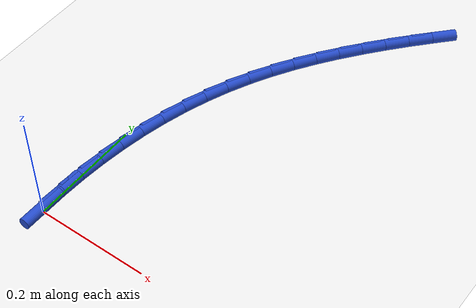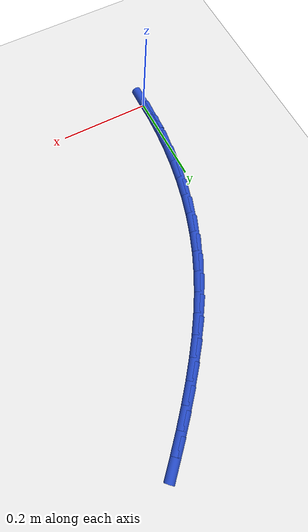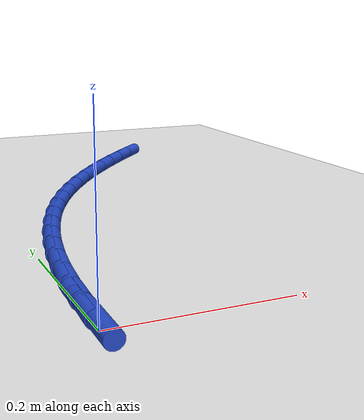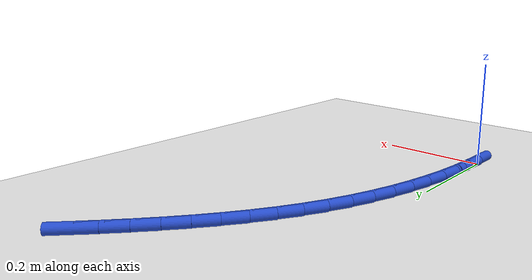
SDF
<sdf version="1.6">
 <world name="default">
  <model name="ground_plane">
   <static>1</static>
   <link name="link">
    <collision name="collision">
     <geometry><plane><normal>0 0 1</normal><size>100 100</size></plane></geometry>
     <surface><friction><ode><mu>100</mu><mu2>50</mu2></ode></friction></surface>
    </collision>
    <visual name="visual">
     <cast_shadows>0</cast_shadows>
     <geometry><plane><normal>0 0 1</normal><size>100 100</size></plane></geometry>
     <material>
      <script><uri>file://media/materials/scripts/gazebo.material</uri><name>Gazebo/WhiteGlow</name></script>
     </material>
    </visual>
   </link>
  </model>
  <model name="line">
   <link name="link_1">
    <pose>0.0006871009686475403 0.04359935567451913 0.01 0 1.57 1.513467387537418</pose>
    <collision name="collision">
     <geometry><cylinder><radius>0.01</radius><length>0.08</length></cylinder></geometry>
    </collision>
    <visual name="visual">
     <material>
      <script><name>Gazebo/Blue</name><uri>file://media/materials/scripts/gazebo.material</uri></script>
     </material>
     <geometry><cylinder><radius>0.01</radius><length>0.08</length></cylinder></geometry>
    </visual>
   </link>
   <link name="link_2">
    <pose>0.00318736421278894 0.08716415119225286 0.01 0 1.57 1.470846072998823</pose>
    <collision name="collision">
     <geometry><cylinder><radius>0.01</radius><length>0.08</length></cylinder></geometry>
    </collision>
    <visual name="visual">
     <material>
      <script><name>Gazebo/Blue</name><uri>file://media/materials/scripts/gazebo.material</uri></script>
     </material>
     <geometry><cylinder><radius>0.01</radius><length>0.08</length></cylinder></geometry>
    </visual>
   </link>
   <link name="link_3">
    <pose>0.007538731798664652 0.1305544141502632 0.01 0 1.57 1.4269265725976394</pose>
    <collision name="collision">
     <geometry><cylinder><radius>0.01</radius><length>0.08</length></cylinder></geometry>
    </collision>
    <visual name="visual">
     <material>
      <script><name>Gazebo/Blue</name><uri>file://media/materials/scripts/gazebo.material</uri></script>
     </material>
     <geometry><cylinder><radius>0.01</radius><length>0.08</length></cylinder></geometry>
    </visual>
   </link>
   <link name="link_4">
    <pose>0.013779145792515098 0.1736301721456119 0.01 0 1.57 1.3814642140110918</pose>
    <collision name="collision">
     <geometry><cylinder><radius>0.01</radius><length>0.08</length></cylinder></geometry>
    </collision>
    <visual name="visual">
     <material>
      <script><name>Gazebo/Blue</name><uri>file://media/materials/scripts/gazebo.material</uri></script>
     </material>
     <geometry><cylinder><radius>0.01</radius><length>0.08</length></cylinder></geometry>
    </visual>
   </link>
   <link name="link_5">
    <pose>0.02194654826058074 0.21625145277536093 0.01 0 1.57 1.334219068965814</pose>
    <collision name="collision">
     <geometry><cylinder><radius>0.01</radius><length>0.08</length></cylinder></geometry>
    </collision>
    <visual name="visual">
     <material>
      <script><name>Gazebo/Blue</name><uri>file://media/materials/scripts/gazebo.material</uri></script>
     </material>
     <geometry><cylinder><radius>0.01</radius><length>0.08</length></cylinder></geometry>
    </visual>
   </link>
   <link name="link_6">
    <pose>0.032078881269102036 0.2582782836365722 0.01 0 1.57 1.2849593329055553</pose>
    <collision name="collision">
     <geometry><cylinder><radius>0.01</radius><length>0.08</length></cylinder></geometry>
    </collision>
    <visual name="visual">
     <material>
      <script><name>Gazebo/Blue</name><uri>file://media/materials/scripts/gazebo.material</uri></script>
     </material>
     <geometry><cylinder><radius>0.01</radius><length>0.08</length></cylinder></geometry>
    </visual>
   </link>
   <link name="link_7">
    <pose>0.044214086884319395 0.2995706923263074 0.01 0 1.57 1.2334666904937064</pose>
    <collision name="collision">
     <geometry><cylinder><radius>0.01</radius><length>0.08</length></cylinder></geometry>
    </collision>
    <visual name="visual">
     <material>
      <script><name>Gazebo/Blue</name><uri>file://media/materials/scripts/gazebo.material</uri></script>
     </material>
     <geometry><cylinder><radius>0.01</radius><length>0.08</length></cylinder></geometry>
    </visual>
   </link>
   <link name="link_8">
    <pose>0.058390107172473296 0.3399887064416287 0.01 0 1.57 1.1795439919968023</pose>
    <collision name="collision">
     <geometry><cylinder><radius>0.01</radius><length>0.08</length></cylinder></geometry>
    </collision>
    <visual name="visual">
     <material>
      <script><name>Gazebo/Blue</name><uri>file://media/materials/scripts/gazebo.material</uri></script>
     </material>
     <geometry><cylinder><radius>0.01</radius><length>0.08</length></cylinder></geometry>
    </visual>
   </link>
   <link name="link_9">
    <pose>0.07464488419980417 0.3793923535795977 0.01 0 1.57 1.1238607000228524</pose>
    <collision name="collision">
     <geometry><cylinder><radius>0.01</radius><length>0.08</length></cylinder></geometry>
    </collision>
    <visual name="visual">
     <material>
      <script><name>Gazebo/Blue</name><uri>file://media/materials/scripts/gazebo.material</uri></script>
     </material>
     <geometry><cylinder><radius>0.01</radius><length>0.08</length></cylinder></geometry>
    </visual>
   </link>
   <link name="link_10">
    <pose>0.09299164648599051 0.41767209738841987 0.01 0 1.57 1.0707966860031783</pose>
    <collision name="collision">
     <geometry><cylinder><radius>0.01</radius><length>0.08</length></cylinder></geometry>
    </collision>
    <visual name="visual">
     <material>
      <script><name>Gazebo/Blue</name><uri>file://media/materials/scripts/gazebo.material</uri></script>
     </material>
     <geometry><cylinder><radius>0.01</radius><length>0.08</length></cylinder></geometry>
    </visual>
   </link>
   <link name="link_11">
    <pose>0.11331598915301787 0.4548755888552381 0.01 0 1.57 1.0220733111712463</pose>
    <collision name="collision">
     <geometry><cylinder><radius>0.01</radius><length>0.08</length></cylinder></geometry>
    </collision>
    <visual name="visual">
     <material>
      <script><name>Gazebo/Blue</name><uri>file://media/materials/scripts/gazebo.material</uri></script>
     </material>
     <geometry><cylinder><radius>0.01</radius><length>0.08</length></cylinder></geometry>
    </visual>
   </link>
   <link name="link_12">
    <pose>0.13546242474052025 0.4911010743592577 0.01 0 1.57 0.9779288143758333</pose>
    <collision name="collision">
     <geometry><cylinder><radius>0.01</radius><length>0.08</length></cylinder></geometry>
    </collision>
    <visual name="visual">
     <material>
      <script><name>Gazebo/Blue</name><uri>file://media/materials/scripts/gazebo.material</uri></script>
     </material>
     <geometry><cylinder><radius>0.01</radius><length>0.08</length></cylinder></geometry>
    </visual>
   </link>
   <link name="link_13">
    <pose>0.1592754461132365 0.5264468245103668 0.01 0 1.57 0.9384811509969231</pose>
    <collision name="collision">
     <geometry><cylinder><radius>0.01</radius><length>0.08</length></cylinder></geometry>
    </collision>
    <visual name="visual">
     <material>
      <script><name>Gazebo/Blue</name><uri>file://media/materials/scripts/gazebo.material</uri></script>
     </material>
     <geometry><cylinder><radius>0.01</radius><length>0.08</length></cylinder></geometry>
    </visual>
   </link>
   <link name="link_14">
    <pose>0.1845995461359056 0.5610111099184542 0.01 0 1.57 0.9037546946857914</pose>
    <collision name="collision">
     <geometry><cylinder><radius>0.01</radius><length>0.08</length></cylinder></geometry>
    </collision>
    <visual name="visual">
     <material>
      <script><name>Gazebo/Blue</name><uri>file://media/materials/scripts/gazebo.material</uri></script>
     </material>
     <geometry><cylinder><radius>0.01</radius><length>0.08</length></cylinder></geometry>
    </visual>
   </link>
   <link name="link_15">
    <pose>0.21127921767326646 0.5948922011934078 0.01 0 1.57 0.8737065398478318</pose>
    <collision name="collision">
     <geometry><cylinder><radius>0.01</radius><length>0.08</length></cylinder></geometry>
    </collision>
    <visual name="visual">
     <material>
      <script><name>Gazebo/Blue</name><uri>file://media/materials/scripts/gazebo.material</uri></script>
     </material>
     <geometry><cylinder><radius>0.01</radius><length>0.08</length></cylinder></geometry>
    </visual>
   </link>
   <link name="link_16">
    <pose>0.2391589535900579 0.6281883689451162 0.01 0 1.57 0.8482503411622736</pose>
    <collision name="collision">
     <geometry><cylinder><radius>0.01</radius><length>0.08</length></cylinder></geometry>
    </collision>
    <visual name="visual">
     <material>
      <script><name>Gazebo/Blue</name><uri>file://media/materials/scripts/gazebo.material</uri></script>
     </material>
     <geometry><cylinder><radius>0.01</radius><length>0.08</length></cylinder></geometry>
    </visual>
   </link>
   <link name="link_17">
    <pose>0.268083246751019 0.6609978837834678 0.01 0 1.57 0.827276311440698</pose>
    <collision name="collision">
     <geometry><cylinder><radius>0.01</radius><length>0.08</length></cylinder></geometry>
    </collision>
    <visual name="visual">
     <material>
      <script><name>Gazebo/Blue</name><uri>file://media/materials/scripts/gazebo.material</uri></script>
     </material>
     <geometry><cylinder><radius>0.01</radius><length>0.08</length></cylinder></geometry>
    </visual>
   </link>
   <link name="link_18">
    <pose>0.2978965900208885 0.6934190163183507 0.01 0 1.57 0.8106669940454487</pose>
    <collision name="collision">
     <geometry><cylinder><radius>0.01</radius><length>0.08</length></cylinder></geometry>
    </collision>
    <visual name="visual">
     <material>
      <script><name>Gazebo/Blue</name><uri>file://media/materials/scripts/gazebo.material</uri></script>
     </material>
     <geometry><cylinder><radius>0.01</radius><length>0.08</length></cylinder></geometry>
    </visual>
   </link>
   <link name="link_160">
    <pose>-2.0816681711721685e-17 1.1102230246251565e-16 0.01 0 1.57 1.5552174281013746</pose>
    <collision name="collision">
     <geometry><cylinder><radius>0.01</radius><length>0.08</length></cylinder></geometry>
    </collision>
    <visual name="visual">
     <material>
      <script><name>Gazebo/Blue</name><uri>file://media/materials/scripts/gazebo.material</uri></script>
     </material>
     <geometry><cylinder><radius>0.01</radius><length>0.08</length></cylinder></geometry>
    </visual>
   </link>
   <link name="link_161">
    <pose>0.0006794656791016696 0.04361095879320516 0.01 0 1.57 1.5552174281013749</pose>
    <collision name="collision">
     <geometry><cylinder><radius>0.01</radius><length>0.08</length></cylinder></geometry>
    </collision>
    <visual name="visual">
     <material>
      <script><name>Gazebo/Blue</name><uri>file://media/materials/scripts/gazebo.material</uri></script>
     </material>
     <geometry><cylinder><radius>0.01</radius><length>0.08</length></cylinder></geometry>
    </visual>
   </link>
  </model>
 </world>
</sdf>
